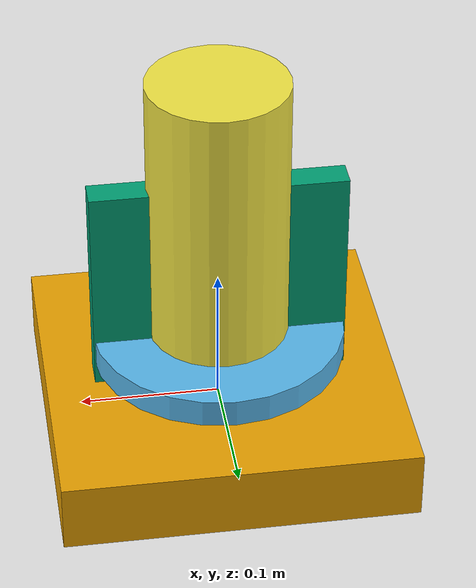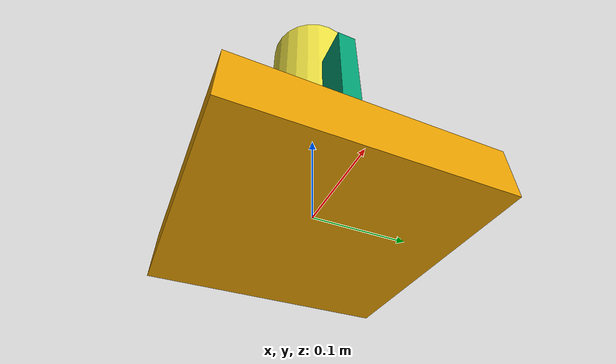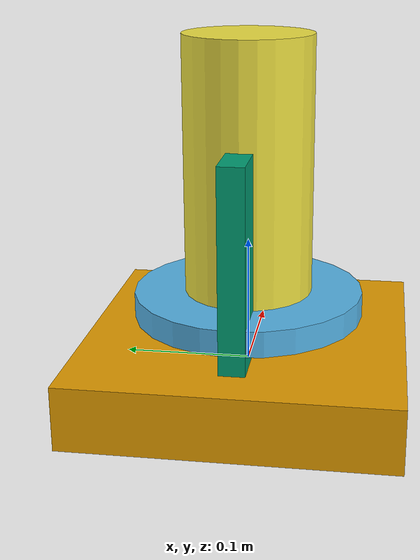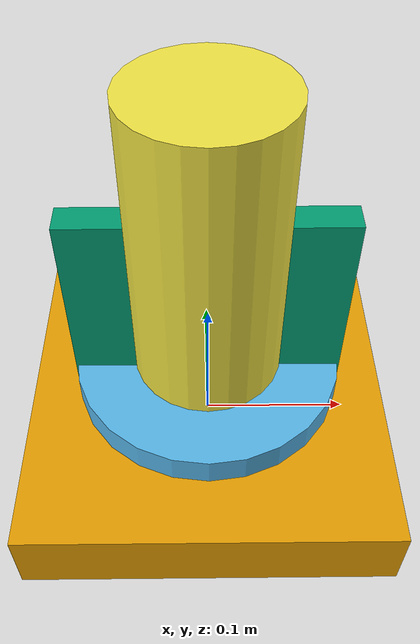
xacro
<?xml version="1.0"?>
<robot name="gimbalbot">

  <link name="base_link">
    <visual>
      <geometry><box size="0.25 0.25 0.05"/></geometry>
    </visual>
  </link>

  <link name="yaw_link">
    <visual>
      <geometry><cylinder radius="0.09" length="0.02"/></geometry>
    </visual>
  </link>

  <joint name="yaw_joint" type="revolute">
    <parent link="base_link"/>
    <child link="yaw_link"/>
    <origin xyz="0 0 0.05" rpy="0 0 0"/>
    <axis xyz="0 0 1"/>
    <limit lower="-3.1416" upper="3.1416" effort="1" velocity="2"/>
  </joint>

  <link name="pitch_link">
    <visual>
      <geometry><box size="0.18 0.02 0.18"/></geometry>
    </visual>
  </link>

  <joint name="pitch_joint" type="revolute">
    <parent link="yaw_link"/>
    <child link="pitch_link"/>
    <origin xyz="0 0 0.04" rpy="0 0 0"/>
    <axis xyz="0 1 0"/>
    <limit lower="-1.5708" upper="1.5708" effort="1" velocity="2"/>
  </joint>

  <link name="roll_link">
    <visual>
      <geometry><cylinder radius="0.05" length="0.20"/></geometry>
    </visual>
  </link>

  <joint name="roll_joint" type="revolute">
    <parent link="pitch_link"/>
    <child link="roll_link"/>
    <origin xyz="0 0 0.07" rpy="0 0 0"/>
    <axis xyz="1 0 0"/>
    <limit lower="-3.1416" upper="3.1416" effort="1" velocity="2"/>
  </joint>

</robot>
